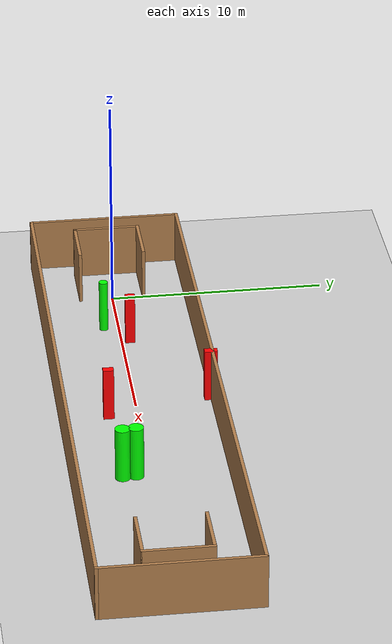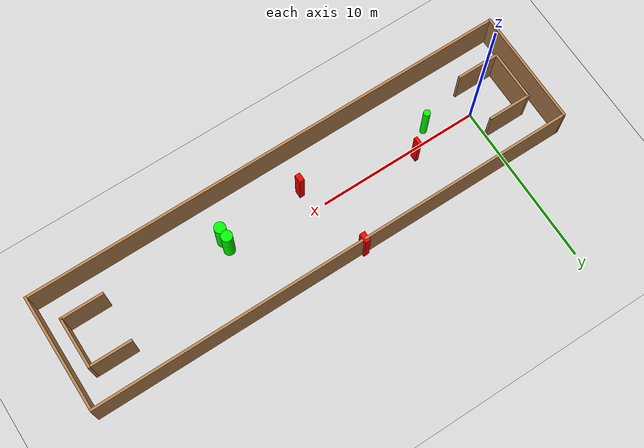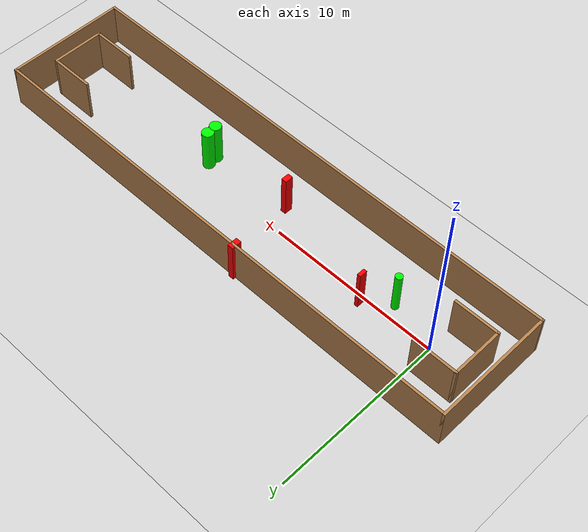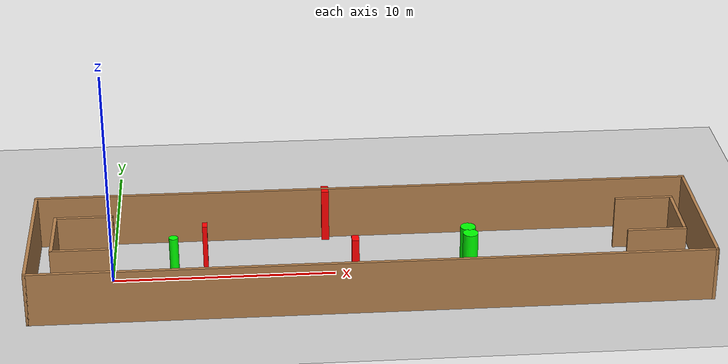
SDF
<sdf version="1.7">
 <world name="default">
  <light name="sun" type="directional">
   <pose>0 0 10 0 -0 0</pose>
   <diffuse>0.8 0.8 0.8 1</diffuse>
   <specular>0.2 0.2 0.2 1</specular>
   <attenuation>
    <range>1000</range>
    <constant>0.9</constant>
    <linear>0.01</linear>
    <quadratic>0.001</quadratic>
   </attenuation>
   <direction>-0.5 0.1 -0.9</direction>
   <spot><inner_angle>0</inner_angle><outer_angle>0</outer_angle><falloff>0</falloff></spot>
  </light>
  <model name="ground_plane">
   <static>1</static>
   <link name="link">
    <collision name="collision">
     <geometry><plane><normal>0 0 1</normal><size>100 100</size></plane></geometry>
     <surface>
      <contact><collide_bitmask>65535</collide_bitmask></contact>
      <friction><ode><mu>100</mu><mu2>50</mu2></ode></friction>
     </surface>
    </collision>
    <visual name="visual">
     <cast_shadows>0</cast_shadows>
     <geometry><plane><normal>0 0 1</normal><size>100 100</size></plane></geometry>
     <material>
      <script><uri>file://media/materials/scripts/gazebo.material</uri><name>Gazebo/Grey</name></script>
     </material>
    </visual>
   </link>
  </model>
  <gravity>0 0 -9.8</gravity>
  <magnetic_field>6e-06 2.3e-05 -4.2e-05</magnetic_field>
  <atmosphere type="adiabatic"/>
  <physics type="ode">
   <max_step_size>0.001</max_step_size>
   <real_time_factor>1</real_time_factor>
   <real_time_update_rate>1000</real_time_update_rate>
  </physics>
  <scene><ambient>0.4 0.4 0.4 1</ambient><background>0.7 0.7 0.7 1</background><shadows>1</shadows></scene>
  <spherical_coordinates>
   <surface_model>EARTH_WGS84</surface_model>
   <latitude_deg>0</latitude_deg>
   <longitude_deg>0</longitude_deg>
   <elevation>0</elevation>
   <heading_deg>0</heading_deg>
  </spherical_coordinates>
  <model name="my_base_walls">
   <link name="Wall_0">
    <collision name="Wall_0_Collision">
     <geometry><box><size>7.15 0.15 2.5</size></box></geometry>
     <pose>0 0 1.25 0 -0 0</pose>
    </collision>
    <visual name="Wall_0_Visual">
     <pose>0 0 1.25 0 -0 0</pose>
     <geometry><box><size>7.15 0.15 2.5</size></box></geometry>
     <material>
      <script><uri>file://media/materials/scripts/gazebo.material</uri><name>Gazebo/Wood</name></script>
      <ambient>1 1 1 1</ambient>
     </material>
     <meta><layer>0</layer></meta>
    </visual>
    <pose>-15 0 0 0 -0 1.5708</pose>
   </link>
   <link name="Wall_10">
    <collision name="Wall_10_Collision">
     <geometry><box><size>2.65 0.15 2.5</size></box></geometry>
     <pose>0 0 1.25 0 -0 0</pose>
    </collision>
    <visual name="Wall_10_Visual">
     <pose>0 0 1.25 0 -0 0</pose>
     <geometry><box><size>2.65 0.15 2.5</size></box></geometry>
     <material>
      <script><uri>file://media/materials/scripts/gazebo.material</uri><name>Gazebo/Wood</name></script>
      <ambient>1 1 1 1</ambient>
     </material>
     <meta><layer>0</layer></meta>
    </visual>
    <pose>-12.75 -1.5 0 0 -0 0</pose>
   </link>
   <link name="Wall_12">
    <collision name="Wall_12_Collision">
     <geometry><box><size>2.65 0.15 2.5</size></box></geometry>
     <pose>0 0 1.25 0 -0 0</pose>
    </collision>
    <visual name="Wall_12_Visual">
     <pose>0 0 1.25 0 -0 0</pose>
     <geometry><box><size>2.65 0.15 2.5</size></box></geometry>
     <material>
      <script><uri>file://media/materials/scripts/gazebo.material</uri><name>Gazebo/Wood</name></script>
      <ambient>1 1 1 1</ambient>
     </material>
     <meta><layer>0</layer></meta>
    </visual>
    <pose>-12.75 1.5 0 0 -0 0</pose>
   </link>
   <link name="Wall_14">
    <collision name="Wall_14_Collision">
     <geometry><box><size>3.15 0.15 2.5</size></box></geometry>
     <pose>0 0 1.25 0 -0 0</pose>
    </collision>
    <visual name="Wall_14_Visual">
     <pose>0 0 1.25 0 -0 0</pose>
     <geometry><box><size>3.15 0.15 2.5</size></box></geometry>
     <material>
      <script><uri>file://media/materials/scripts/gazebo.material</uri><name>Gazebo/Wood</name></script>
      <ambient>1 1 1 1</ambient>
     </material>
     <meta><layer>0</layer></meta>
    </visual>
    <pose>14 0 0 0 -0 -1.5708</pose>
   </link>
   <link name="Wall_15">
    <collision name="Wall_15_Collision">
     <geometry><box><size>2.65 0.15 2.5</size></box></geometry>
     <pose>0 0 1.25 0 -0 0</pose>
    </collision>
    <visual name="Wall_15_Visual">
     <pose>0 0 1.25 0 -0 0</pose>
     <geometry><box><size>2.65 0.15 2.5</size></box></geometry>
     <material>
      <script><uri>file://media/materials/scripts/gazebo.material</uri><name>Gazebo/Wood</name></script>
      <ambient>1 1 1 1</ambient>
     </material>
     <meta><layer>0</layer></meta>
    </visual>
    <pose>12.75 -1.5 0 0 -0 3.14159</pose>
   </link>
   <link name="Wall_17">
    <collision name="Wall_17_Collision">
     <geometry><box><size>2.65 0.15 2.5</size></box></geometry>
     <pose>0 0 1.25 0 -0 0</pose>
    </collision>
    <visual name="Wall_17_Visual">
     <pose>0 0 1.25 0 -0 0</pose>
     <geometry><box><size>2.65 0.15 2.5</size></box></geometry>
     <material>
      <script><uri>file://media/materials/scripts/gazebo.material</uri><name>Gazebo/Wood</name></script>
      <ambient>1 1 1 1</ambient>
     </material>
     <meta><layer>0</layer></meta>
    </visual>
    <pose>12.75 1.5 0 0 -0 3.14159</pose>
   </link>
   <link name="Wall_2">
    <collision name="Wall_2_Collision">
     <geometry><box><size>30.15 0.15 2.5</size></box></geometry>
     <pose>0 0 1.25 0 -0 0</pose>
    </collision>
    <visual name="Wall_2_Visual">
     <pose>0 0 1.25 0 -0 0</pose>
     <geometry><box><size>30.15 0.15 2.5</size></box></geometry>
     <material>
      <script><uri>file://media/materials/scripts/gazebo.material</uri><name>Gazebo/Wood</name></script>
      <ambient>1 1 1 1</ambient>
     </material>
     <meta><layer>0</layer></meta>
    </visual>
    <pose>-0 -3.5 0 0 -0 0</pose>
   </link>
   <link name="Wall_4">
    <collision name="Wall_4_Collision">
     <geometry><box><size>30.15 0.15 2.5</size></box></geometry>
     <pose>0 0 1.25 0 -0 0</pose>
    </collision>
    <visual name="Wall_4_Visual">
     <pose>0 0 1.25 0 -0 0</pose>
     <geometry><box><size>30.15 0.15 2.5</size></box></geometry>
     <material>
      <script><uri>file://media/materials/scripts/gazebo.material</uri><name>Gazebo/Wood</name></script>
      <ambient>1 1 1 1</ambient>
     </material>
     <meta><layer>0</layer></meta>
    </visual>
    <pose>-0 3.5 0 0 -0 0</pose>
   </link>
   <link name="Wall_6">
    <collision name="Wall_6_Collision">
     <geometry><box><size>7.15 0.15 2.5</size></box></geometry>
     <pose>0 0 1.25 0 -0 0</pose>
    </collision>
    <visual name="Wall_6_Visual">
     <pose>0 0 1.25 0 -0 0</pose>
     <geometry><box><size>7.15 0.15 2.5</size></box></geometry>
     <material>
      <script><uri>file://media/materials/scripts/gazebo.material</uri><name>Gazebo/Wood</name></script>
      <ambient>1 1 1 1</ambient>
     </material>
     <meta><layer>0</layer></meta>
    </visual>
    <pose>15 0 0 0 -0 -1.5708</pose>
   </link>
   <link name="Wall_9">
    <collision name="Wall_9_Collision">
     <geometry><box><size>3.15 0.15 2.5</size></box></geometry>
     <pose>0 0 1.25 0 -0 0</pose>
    </collision>
    <visual name="Wall_9_Visual">
     <pose>0 0 1.25 0 -0 0</pose>
     <geometry><box><size>3.15 0.15 2.5</size></box></geometry>
     <material>
      <script><uri>file://media/materials/scripts/gazebo.material</uri><name>Gazebo/Wood</name></script>
      <ambient>1 1 1 1</ambient>
     </material>
     <meta><layer>0</layer></meta>
    </visual>
    <pose>-14 0 0 0 -0 -1.5708</pose>
   </link>
   <static>1</static>
   <pose>11.5 0 0 0 -0 0</pose>
  </model>
  <model name="cylinder1">
   <static>1</static>
   <link name="link">
    <inertial>
     <mass>1</mass>
     <inertia><ixx>0.5</ixx><ixy>0</ixy><ixz>0</ixz><iyy>0.5</iyy><iyz>0</iyz><izz>1</izz></inertia>
    </inertial>
    <collision name="collision">
     <geometry><cylinder><radius>0.2045310819249854</radius><length>2.5</length></cylinder></geometry>
    </collision>
    <visual name="visual">
     <geometry><cylinder><radius>0.2045310819249854</radius><length>2.5</length></cylinder></geometry>
     <material>
      <ambient>0 1 0 1</ambient>
      <diffuse>0 1 0 1</diffuse>
      <specular>0.1 0.1 0.1 1</specular>
      <emissive>0 0 0 0</emissive>
     </material>
    </visual>
   </link>
   <pose>2.815673644367246 -0.7029357717207629 1.25 0 0 0</pose>
  </model>
  <model name="cylinder2">
   <static>1</static>
   <link name="link">
    <inertial>
     <mass>1</mass>
     <inertia><ixx>0.5</ixx><ixy>0</ixy><ixz>0</ixz><iyy>0.5</iyy><iyz>0</iyz><izz>1</izz></inertia>
    </inertial>
    <collision name="collision">
     <geometry><cylinder><radius>0.3395995605915338</radius><length>2.5</length></cylinder></geometry>
    </collision>
    <visual name="visual">
     <geometry><cylinder><radius>0.3395995605915338</radius><length>2.5</length></cylinder></geometry>
     <material>
      <ambient>0 1 0 1</ambient>
      <diffuse>0 1 0 1</diffuse>
      <specular>0.1 0.1 0.1 1</specular>
      <emissive>0 0 0 0</emissive>
     </material>
    </visual>
   </link>
   <pose>15.885322406113934 -0.657219590201434 1.25 0 0 0</pose>
  </model>
  <model name="cylinder3">
   <static>1</static>
   <link name="link">
    <inertial>
     <mass>1</mass>
     <inertia><ixx>0.5</ixx><ixy>0</ixy><ixz>0</ixz><iyy>0.5</iyy><iyz>0</iyz><izz>1</izz></inertia>
    </inertial>
    <collision name="collision">
     <geometry><cylinder><radius>0.3395548599613424</radius><length>2.5</length></cylinder></geometry>
    </collision>
    <visual name="visual">
     <geometry><cylinder><radius>0.3395548599613424</radius><length>2.5</length></cylinder></geometry>
     <material>
      <ambient>0 1 0 1</ambient>
      <diffuse>0 1 0 1</diffuse>
      <specular>0.1 0.1 0.1 1</specular>
      <emissive>0 0 0 0</emissive>
     </material>
    </visual>
   </link>
   <pose>15.937407913217378 -1.25160006124645 1.25 0 0 0</pose>
  </model>
  <model name="box1">
   <static>1</static>
   <link name="link">
    <inertial>
     <mass>1</mass>
     <inertia><ixx>0.083</ixx><ixy>0</ixy><ixz>0</ixz><iyy>0.083</iyy><iyz>0</iyz><izz>0.083</izz></inertia>
    </inertial>
    <collision name="collision">
     <geometry><box><size>0.3188174303947694 0.4789174684311722 2.5</size></box></geometry>
    </collision>
    <visual name="visual">
     <geometry><box><size>0.3188174303947694 0.4789174684311722 2.5</size></box></geometry>
     <material>
      <ambient>1 0 0 1</ambient>
      <diffuse>1 0 0 1</diffuse>
      <specular>0.1 0.1 0.1 1</specular>
      <emissive>0 0 0 0</emissive>
     </material>
    </visual>
    <sensor name="my_contact" type="contact">
     <contact><collision>box_collision</collision><topic>__default_topic__</topic></contact>
    </sensor>
   </link>
   <pose>10.810250464176505 -1.3266419150321158 1.25 0 0 0</pose>
  </model>
  <model name="box2">
   <static>1</static>
   <link name="link">
    <inertial>
     <mass>1</mass>
     <inertia><ixx>0.083</ixx><ixy>0</ixy><ixz>0</ixz><iyy>0.083</iyy><iyz>0</iyz><izz>0.083</izz></inertia>
    </inertial>
    <collision name="collision">
     <geometry><box><size>0.33641419072839535 0.5865070438801341 2.5</size></box></geometry>
    </collision>
    <visual name="visual">
     <geometry><box><size>0.33641419072839535 0.5865070438801341 2.5</size></box></geometry>
     <material>
      <ambient>1 0 0 1</ambient>
      <diffuse>1 0 0 1</diffuse>
      <specular>0.1 0.1 0.1 1</specular>
      <emissive>0 0 0 0</emissive>
     </material>
    </visual>
    <sensor name="my_contact" type="contact">
     <contact><collision>box_collision</collision><topic>__default_topic__</topic></contact>
    </sensor>
   </link>
   <pose>9.715784511901154 3.4342816498066497 1.25 0 0 0</pose>
  </model>
  <model name="box3">
   <static>1</static>
   <link name="link">
    <inertial>
     <mass>1</mass>
     <inertia><ixx>0.083</ixx><ixy>0</ixy><ixz>0</ixz><iyy>0.083</iyy><iyz>0</iyz><izz>0.083</izz></inertia>
    </inertial>
    <collision name="collision">
     <geometry><box><size>0.21137734557238727 0.4538089180544613 2.5</size></box></geometry>
    </collision>
    <visual name="visual">
     <geometry><box><size>0.21137734557238727 0.4538089180544613 2.5</size></box></geometry>
     <material>
      <ambient>1 0 0 1</ambient>
      <diffuse>1 0 0 1</diffuse>
      <specular>0.1 0.1 0.1 1</specular>
      <emissive>0 0 0 0</emissive>
     </material>
    </visual>
    <sensor name="my_contact" type="contact">
     <contact><collision>box_collision</collision><topic>__default_topic__</topic></contact>
    </sensor>
   </link>
   <pose>4.1856908879213375 0.3869303843058134 1.25 0 0 0</pose>
  </model>
 </world>
</sdf>
